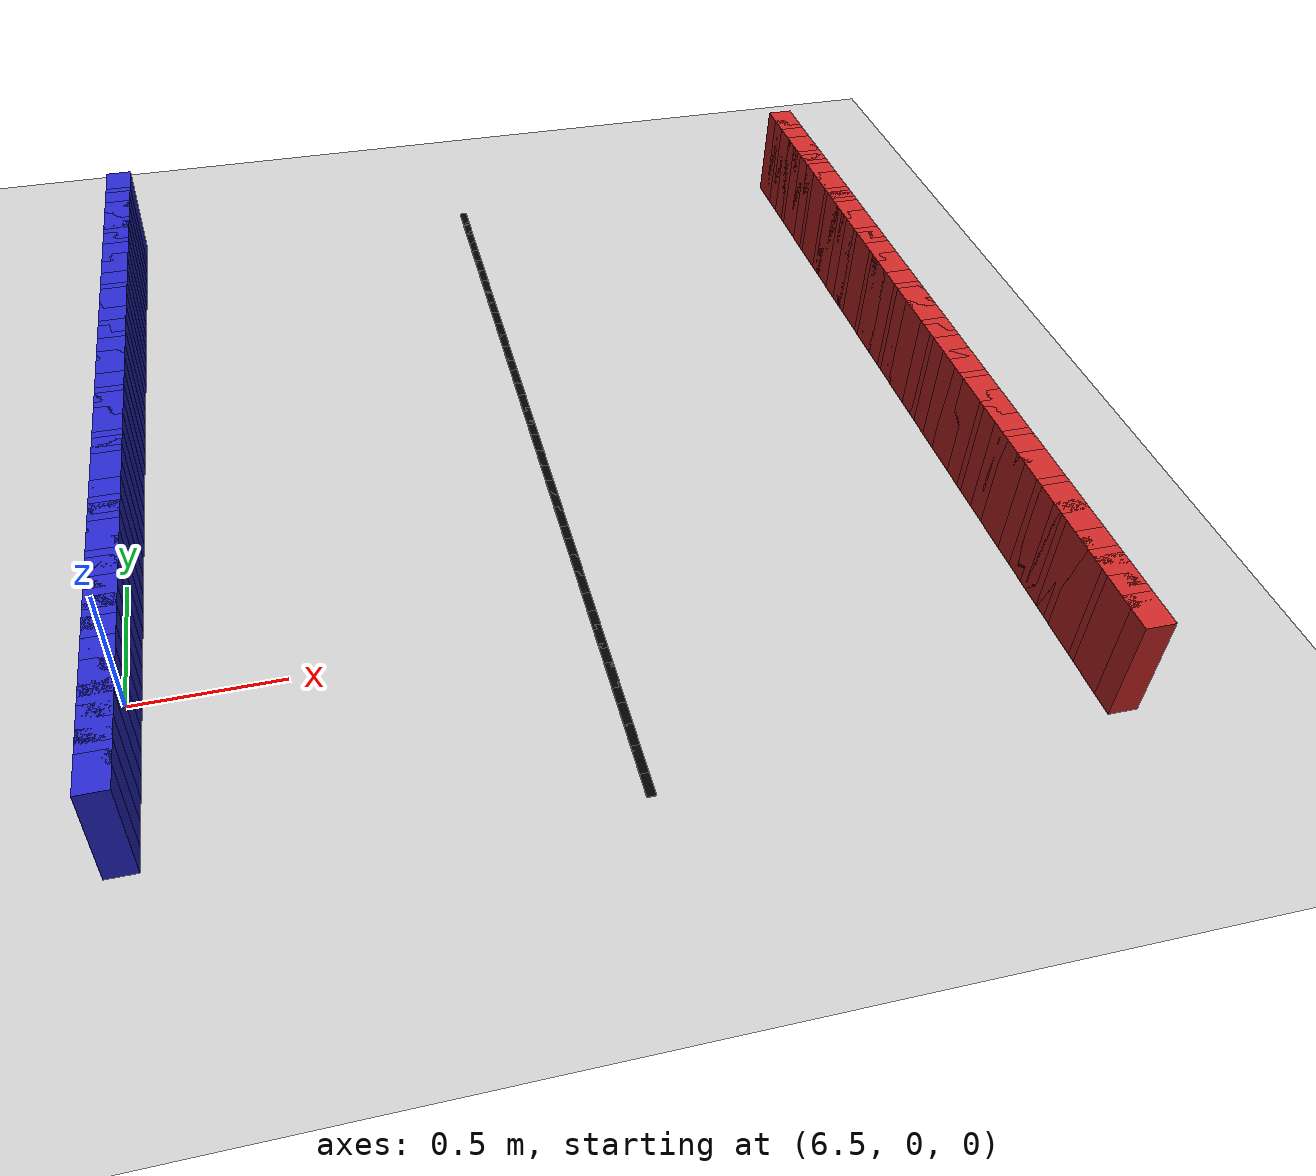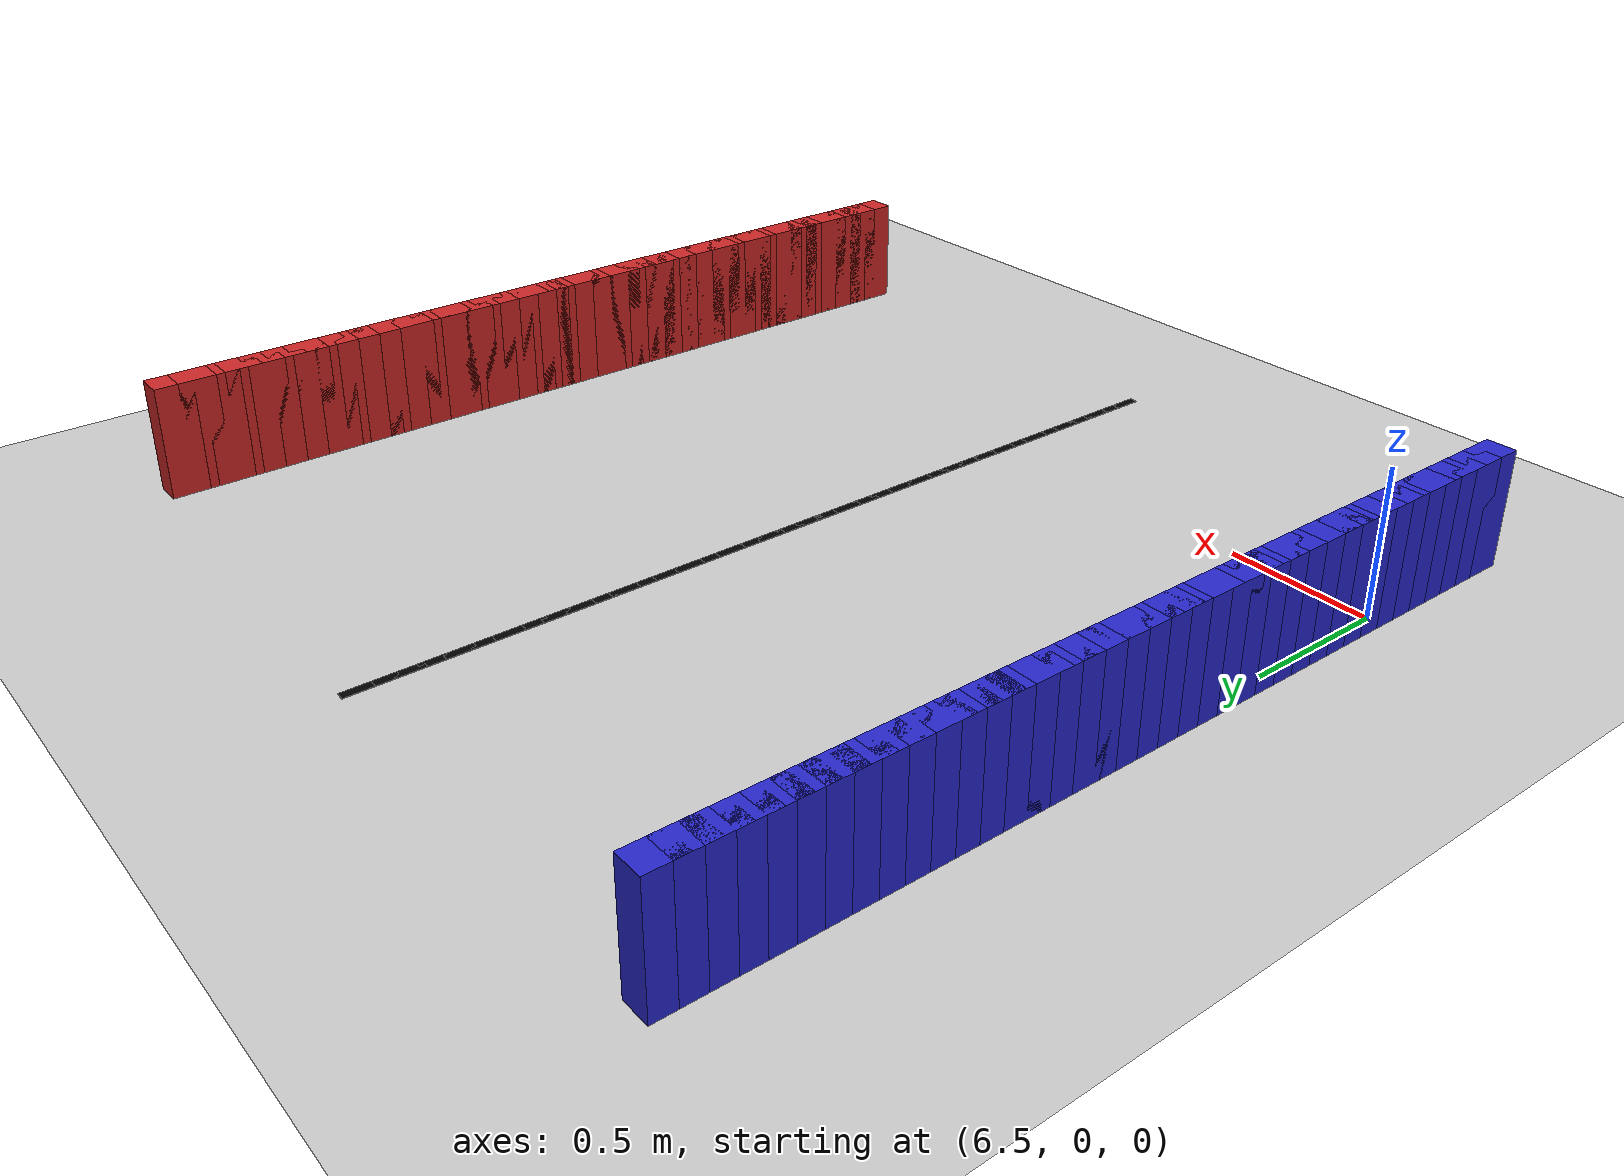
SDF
<sdf version="1.6">
 <world name="new_race_track">
  <include><uri>model://ground_plane</uri></include>
  <include><uri>model://sun</uri></include>
  <model name="iw_439">
   <static>true</static>
   <pose>6.5000 -0.5200 0.200 0 0 1.5708</pose>
   <link name="l">
    <collision name="c"><geometry><box><size>0.1300 0.1 0.4</size></box></geometry></collision>
    <visual name="v">
     <geometry><box><size>0.1300 0.1 0.4</size></box></geometry>
     <material><ambient>0.15 0.15 0.8 1</ambient><diffuse>0.15 0.15 0.8 1</diffuse></material>
    </visual>
   </link>
  </model>
  <model name="iw_440">
   <static>true</static>
   <pose>6.5000 -0.4400 0.200 0 0 1.5708</pose>
   <link name="l">
    <collision name="c"><geometry><box><size>0.1300 0.1 0.4</size></box></geometry></collision>
    <visual name="v">
     <geometry><box><size>0.1300 0.1 0.4</size></box></geometry>
     <material><ambient>0.15 0.15 0.8 1</ambient><diffuse>0.15 0.15 0.8 1</diffuse></material>
    </visual>
   </link>
  </model>
  <model name="iw_441">
   <static>true</static>
   <pose>6.5000 -0.3600 0.200 0 0 1.5708</pose>
   <link name="l">
    <collision name="c"><geometry><box><size>0.1300 0.1 0.4</size></box></geometry></collision>
    <visual name="v">
     <geometry><box><size>0.1300 0.1 0.4</size></box></geometry>
     <material><ambient>0.15 0.15 0.8 1</ambient><diffuse>0.15 0.15 0.8 1</diffuse></material>
    </visual>
   </link>
  </model>
  <model name="iw_442">
   <static>true</static>
   <pose>6.5000 -0.2800 0.200 0 0 1.5708</pose>
   <link name="l">
    <collision name="c"><geometry><box><size>0.1300 0.1 0.4</size></box></geometry></collision>
    <visual name="v">
     <geometry><box><size>0.1300 0.1 0.4</size></box></geometry>
     <material><ambient>0.15 0.15 0.8 1</ambient><diffuse>0.15 0.15 0.8 1</diffuse></material>
    </visual>
   </link>
  </model>
  <model name="iw_443">
   <static>true</static>
   <pose>6.5000 -0.2000 0.200 0 0 1.5708</pose>
   <link name="l">
    <collision name="c"><geometry><box><size>0.1300 0.1 0.4</size></box></geometry></collision>
    <visual name="v">
     <geometry><box><size>0.1300 0.1 0.4</size></box></geometry>
     <material><ambient>0.15 0.15 0.8 1</ambient><diffuse>0.15 0.15 0.8 1</diffuse></material>
    </visual>
   </link>
  </model>
  <model name="iw_444">
   <static>true</static>
   <pose>6.5000 -0.1200 0.200 0 0 1.5708</pose>
   <link name="l">
    <collision name="c"><geometry><box><size>0.1300 0.1 0.4</size></box></geometry></collision>
    <visual name="v">
     <geometry><box><size>0.1300 0.1 0.4</size></box></geometry>
     <material><ambient>0.15 0.15 0.8 1</ambient><diffuse>0.15 0.15 0.8 1</diffuse></material>
    </visual>
   </link>
  </model>
  <model name="iw_445">
   <static>true</static>
   <pose>6.5000 -0.0400 0.200 0 0 1.5708</pose>
   <link name="l">
    <collision name="c"><geometry><box><size>0.1300 0.1 0.4</size></box></geometry></collision>
    <visual name="v">
     <geometry><box><size>0.1300 0.1 0.4</size></box></geometry>
     <material><ambient>0.15 0.15 0.8 1</ambient><diffuse>0.15 0.15 0.8 1</diffuse></material>
    </visual>
   </link>
  </model>
  <model name="iw_446">
   <static>true</static>
   <pose>6.5000 0.0400 0.200 0 0 1.5708</pose>
   <link name="l">
    <collision name="c"><geometry><box><size>0.1300 0.1 0.4</size></box></geometry></collision>
    <visual name="v">
     <geometry><box><size>0.1300 0.1 0.4</size></box></geometry>
     <material><ambient>0.15 0.15 0.8 1</ambient><diffuse>0.15 0.15 0.8 1</diffuse></material>
    </visual>
   </link>
  </model>
  <model name="iw_447">
   <static>true</static>
   <pose>6.5000 0.1200 0.200 0 0 1.5708</pose>
   <link name="l">
    <collision name="c"><geometry><box><size>0.1300 0.1 0.4</size></box></geometry></collision>
    <visual name="v">
     <geometry><box><size>0.1300 0.1 0.4</size></box></geometry>
     <material><ambient>0.15 0.15 0.8 1</ambient><diffuse>0.15 0.15 0.8 1</diffuse></material>
    </visual>
   </link>
  </model>
  <model name="iw_448">
   <static>true</static>
   <pose>6.5000 0.2000 0.200 0 0 1.5708</pose>
   <link name="l">
    <collision name="c"><geometry><box><size>0.1300 0.1 0.4</size></box></geometry></collision>
    <visual name="v">
     <geometry><box><size>0.1300 0.1 0.4</size></box></geometry>
     <material><ambient>0.15 0.15 0.8 1</ambient><diffuse>0.15 0.15 0.8 1</diffuse></material>
    </visual>
   </link>
  </model>
  <model name="iw_449">
   <static>true</static>
   <pose>6.5000 0.2800 0.200 0 0 1.5708</pose>
   <link name="l">
    <collision name="c"><geometry><box><size>0.1300 0.1 0.4</size></box></geometry></collision>
    <visual name="v">
     <geometry><box><size>0.1300 0.1 0.4</size></box></geometry>
     <material><ambient>0.15 0.15 0.8 1</ambient><diffuse>0.15 0.15 0.8 1</diffuse></material>
    </visual>
   </link>
  </model>
  <model name="iw_450">
   <static>true</static>
   <pose>6.5000 0.3600 0.200 0 0 1.5708</pose>
   <link name="l">
    <collision name="c"><geometry><box><size>0.1300 0.1 0.4</size></box></geometry></collision>
    <visual name="v">
     <geometry><box><size>0.1300 0.1 0.4</size></box></geometry>
     <material><ambient>0.15 0.15 0.8 1</ambient><diffuse>0.15 0.15 0.8 1</diffuse></material>
    </visual>
   </link>
  </model>
  <model name="iw_451">
   <static>true</static>
   <pose>6.5000 0.4400 0.200 0 0 1.5708</pose>
   <link name="l">
    <collision name="c"><geometry><box><size>0.1300 0.1 0.4</size></box></geometry></collision>
    <visual name="v">
     <geometry><box><size>0.1300 0.1 0.4</size></box></geometry>
     <material><ambient>0.15 0.15 0.8 1</ambient><diffuse>0.15 0.15 0.8 1</diffuse></material>
    </visual>
   </link>
  </model>
  <model name="iw_452">
   <static>true</static>
   <pose>6.5000 0.5200 0.200 0 0 1.5708</pose>
   <link name="l">
    <collision name="c"><geometry><box><size>0.1300 0.1 0.4</size></box></geometry></collision>
    <visual name="v">
     <geometry><box><size>0.1300 0.1 0.4</size></box></geometry>
     <material><ambient>0.15 0.15 0.8 1</ambient><diffuse>0.15 0.15 0.8 1</diffuse></material>
    </visual>
   </link>
  </model>
  <model name="iw_453">
   <static>true</static>
   <pose>6.5000 0.6000 0.200 0 0 1.5708</pose>
   <link name="l">
    <collision name="c"><geometry><box><size>0.1300 0.1 0.4</size></box></geometry></collision>
    <visual name="v">
     <geometry><box><size>0.1300 0.1 0.4</size></box></geometry>
     <material><ambient>0.15 0.15 0.8 1</ambient><diffuse>0.15 0.15 0.8 1</diffuse></material>
    </visual>
   </link>
  </model>
  <model name="iw_454">
   <static>true</static>
   <pose>6.5000 0.6800 0.200 0 0 1.5708</pose>
   <link name="l">
    <collision name="c"><geometry><box><size>0.1300 0.1 0.4</size></box></geometry></collision>
    <visual name="v">
     <geometry><box><size>0.1300 0.1 0.4</size></box></geometry>
     <material><ambient>0.15 0.15 0.8 1</ambient><diffuse>0.15 0.15 0.8 1</diffuse></material>
    </visual>
   </link>
  </model>
  <model name="iw_455">
   <static>true</static>
   <pose>6.5000 0.7600 0.200 0 0 1.5708</pose>
   <link name="l">
    <collision name="c"><geometry><box><size>0.1300 0.1 0.4</size></box></geometry></collision>
    <visual name="v">
     <geometry><box><size>0.1300 0.1 0.4</size></box></geometry>
     <material><ambient>0.15 0.15 0.8 1</ambient><diffuse>0.15 0.15 0.8 1</diffuse></material>
    </visual>
   </link>
  </model>
  <model name="iw_456">
   <static>true</static>
   <pose>6.5000 0.8400 0.200 0 0 1.5708</pose>
   <link name="l">
    <collision name="c"><geometry><box><size>0.1300 0.1 0.4</size></box></geometry></collision>
    <visual name="v">
     <geometry><box><size>0.1300 0.1 0.4</size></box></geometry>
     <material><ambient>0.15 0.15 0.8 1</ambient><diffuse>0.15 0.15 0.8 1</diffuse></material>
    </visual>
   </link>
  </model>
  <model name="iw_457">
   <static>true</static>
   <pose>6.5000 0.9200 0.200 0 0 1.5708</pose>
   <link name="l">
    <collision name="c"><geometry><box><size>0.1300 0.1 0.4</size></box></geometry></collision>
    <visual name="v">
     <geometry><box><size>0.1300 0.1 0.4</size></box></geometry>
     <material><ambient>0.15 0.15 0.8 1</ambient><diffuse>0.15 0.15 0.8 1</diffuse></material>
    </visual>
   </link>
  </model>
  <model name="iw_458">
   <static>true</static>
   <pose>6.5000 1.0000 0.200 0 0 1.5708</pose>
   <link name="l">
    <collision name="c"><geometry><box><size>0.1300 0.1 0.4</size></box></geometry></collision>
    <visual name="v">
     <geometry><box><size>0.1300 0.1 0.4</size></box></geometry>
     <material><ambient>0.15 0.15 0.8 1</ambient><diffuse>0.15 0.15 0.8 1</diffuse></material>
    </visual>
   </link>
  </model>
  <model name="iw_459">
   <static>true</static>
   <pose>6.5000 1.0800 0.200 0 0 1.5708</pose>
   <link name="l">
    <collision name="c"><geometry><box><size>0.1300 0.1 0.4</size></box></geometry></collision>
    <visual name="v">
     <geometry><box><size>0.1300 0.1 0.4</size></box></geometry>
     <material><ambient>0.15 0.15 0.8 1</ambient><diffuse>0.15 0.15 0.8 1</diffuse></material>
    </visual>
   </link>
  </model>
  <model name="iw_460">
   <static>true</static>
   <pose>6.5000 1.1600 0.200 0 0 1.5708</pose>
   <link name="l">
    <collision name="c"><geometry><box><size>0.1300 0.1 0.4</size></box></geometry></collision>
    <visual name="v">
     <geometry><box><size>0.1300 0.1 0.4</size></box></geometry>
     <material><ambient>0.15 0.15 0.8 1</ambient><diffuse>0.15 0.15 0.8 1</diffuse></material>
    </visual>
   </link>
  </model>
  <model name="iw_461">
   <static>true</static>
   <pose>6.5000 1.2400 0.200 0 0 1.5708</pose>
   <link name="l">
    <collision name="c"><geometry><box><size>0.1300 0.1 0.4</size></box></geometry></collision>
    <visual name="v">
     <geometry><box><size>0.1300 0.1 0.4</size></box></geometry>
     <material><ambient>0.15 0.15 0.8 1</ambient><diffuse>0.15 0.15 0.8 1</diffuse></material>
    </visual>
   </link>
  </model>
  <model name="iw_462">
   <static>true</static>
   <pose>6.5000 1.3200 0.200 0 0 1.5708</pose>
   <link name="l">
    <collision name="c"><geometry><box><size>0.1300 0.1 0.4</size></box></geometry></collision>
    <visual name="v">
     <geometry><box><size>0.1300 0.1 0.4</size></box></geometry>
     <material><ambient>0.15 0.15 0.8 1</ambient><diffuse>0.15 0.15 0.8 1</diffuse></material>
    </visual>
   </link>
  </model>
  <model name="iw_463">
   <static>true</static>
   <pose>6.5000 1.4000 0.200 0 0 1.5708</pose>
   <link name="l">
    <collision name="c"><geometry><box><size>0.1300 0.1 0.4</size></box></geometry></collision>
    <visual name="v">
     <geometry><box><size>0.1300 0.1 0.4</size></box></geometry>
     <material><ambient>0.15 0.15 0.8 1</ambient><diffuse>0.15 0.15 0.8 1</diffuse></material>
    </visual>
   </link>
  </model>
  <model name="iw_464">
   <static>true</static>
   <pose>6.5000 1.4800 0.200 0 0 1.5708</pose>
   <link name="l">
    <collision name="c"><geometry><box><size>0.1300 0.1 0.4</size></box></geometry></collision>
    <visual name="v">
     <geometry><box><size>0.1300 0.1 0.4</size></box></geometry>
     <material><ambient>0.15 0.15 0.8 1</ambient><diffuse>0.15 0.15 0.8 1</diffuse></material>
    </visual>
   </link>
  </model>
  <model name="iw_465">
   <static>true</static>
   <pose>6.5000 1.5600 0.200 0 0 1.5708</pose>
   <link name="l">
    <collision name="c"><geometry><box><size>0.1300 0.1 0.4</size></box></geometry></collision>
    <visual name="v">
     <geometry><box><size>0.1300 0.1 0.4</size></box></geometry>
     <material><ambient>0.15 0.15 0.8 1</ambient><diffuse>0.15 0.15 0.8 1</diffuse></material>
    </visual>
   </link>
  </model>
  <model name="iw_466">
   <static>true</static>
   <pose>6.5000 1.6400 0.200 0 0 1.5708</pose>
   <link name="l">
    <collision name="c"><geometry><box><size>0.1300 0.1 0.4</size></box></geometry></collision>
    <visual name="v">
     <geometry><box><size>0.1300 0.1 0.4</size></box></geometry>
     <material><ambient>0.15 0.15 0.8 1</ambient><diffuse>0.15 0.15 0.8 1</diffuse></material>
    </visual>
   </link>
  </model>
  <model name="iw_467">
   <static>true</static>
   <pose>6.5000 1.7200 0.200 0 0 1.5708</pose>
   <link name="l">
    <collision name="c"><geometry><box><size>0.1300 0.1 0.4</size></box></geometry></collision>
    <visual name="v">
     <geometry><box><size>0.1300 0.1 0.4</size></box></geometry>
     <material><ambient>0.15 0.15 0.8 1</ambient><diffuse>0.15 0.15 0.8 1</diffuse></material>
    </visual>
   </link>
  </model>
  <model name="iw_468">
   <static>true</static>
   <pose>6.5000 1.8000 0.200 0 0 1.5708</pose>
   <link name="l">
    <collision name="c"><geometry><box><size>0.1300 0.1 0.4</size></box></geometry></collision>
    <visual name="v">
     <geometry><box><size>0.1300 0.1 0.4</size></box></geometry>
     <material><ambient>0.15 0.15 0.8 1</ambient><diffuse>0.15 0.15 0.8 1</diffuse></material>
    </visual>
   </link>
  </model>
  <model name="iw_469">
   <static>true</static>
   <pose>6.5000 1.8800 0.200 0 0 1.5708</pose>
   <link name="l">
    <collision name="c"><geometry><box><size>0.1300 0.1 0.4</size></box></geometry></collision>
    <visual name="v">
     <geometry><box><size>0.1300 0.1 0.4</size></box></geometry>
     <material><ambient>0.15 0.15 0.8 1</ambient><diffuse>0.15 0.15 0.8 1</diffuse></material>
    </visual>
   </link>
  </model>
  <model name="iw_470">
   <static>true</static>
   <pose>6.5000 1.9600 0.200 0 0 1.5708</pose>
   <link name="l">
    <collision name="c"><geometry><box><size>0.1300 0.1 0.4</size></box></geometry></collision>
    <visual name="v">
     <geometry><box><size>0.1300 0.1 0.4</size></box></geometry>
     <material><ambient>0.15 0.15 0.8 1</ambient><diffuse>0.15 0.15 0.8 1</diffuse></material>
    </visual>
   </link>
  </model>
  <model name="iw_471">
   <static>true</static>
   <pose>6.5000 2.0400 0.200 0 0 1.5708</pose>
   <link name="l">
    <collision name="c"><geometry><box><size>0.1300 0.1 0.4</size></box></geometry></collision>
    <visual name="v">
     <geometry><box><size>0.1300 0.1 0.4</size></box></geometry>
     <material><ambient>0.15 0.15 0.8 1</ambient><diffuse>0.15 0.15 0.8 1</diffuse></material>
    </visual>
   </link>
  </model>
  <model name="iw_472">
   <static>true</static>
   <pose>6.5000 2.1200 0.200 0 0 1.5708</pose>
   <link name="l">
    <collision name="c"><geometry><box><size>0.1300 0.1 0.4</size></box></geometry></collision>
    <visual name="v">
     <geometry><box><size>0.1300 0.1 0.4</size></box></geometry>
     <material><ambient>0.15 0.15 0.8 1</ambient><diffuse>0.15 0.15 0.8 1</diffuse></material>
    </visual>
   </link>
  </model>
  <model name="iw_473">
   <static>true</static>
   <pose>6.5000 2.2000 0.200 0 0 1.5708</pose>
   <link name="l">
    <collision name="c"><geometry><box><size>0.1300 0.1 0.4</size></box></geometry></collision>
    <visual name="v">
     <geometry><box><size>0.1300 0.1 0.4</size></box></geometry>
     <material><ambient>0.15 0.15 0.8 1</ambient><diffuse>0.15 0.15 0.8 1</diffuse></material>
    </visual>
   </link>
  </model>
  <model name="iw_474">
   <static>true</static>
   <pose>6.5000 2.2800 0.200 0 0 1.5708</pose>
   <link name="l">
    <collision name="c"><geometry><box><size>0.1300 0.1 0.4</size></box></geometry></collision>
    <visual name="v">
     <geometry><box><size>0.1300 0.1 0.4</size></box></geometry>
     <material><ambient>0.15 0.15 0.8 1</ambient><diffuse>0.15 0.15 0.8 1</diffuse></material>
    </visual>
   </link>
  </model>
  <model name="iw_475">
   <static>true</static>
   <pose>6.5000 2.3600 0.200 0 0 1.5708</pose>
   <link name="l">
    <collision name="c"><geometry><box><size>0.1300 0.1 0.4</size></box></geometry></collision>
    <visual name="v">
     <geometry><box><size>0.1300 0.1 0.4</size></box></geometry>
     <material><ambient>0.15 0.15 0.8 1</ambient><diffuse>0.15 0.15 0.8 1</diffuse></material>
    </visual>
   </link>
  </model>
  <model name="iw_476">
   <static>true</static>
   <pose>6.5000 2.4400 0.200 0 0 1.5708</pose>
   <link name="l">
    <collision name="c"><geometry><box><size>0.1300 0.1 0.4</size></box></geometry></collision>
    <visual name="v">
     <geometry><box><size>0.1300 0.1 0.4</size></box></geometry>
     <material><ambient>0.15 0.15 0.8 1</ambient><diffuse>0.15 0.15 0.8 1</diffuse></material>
    </visual>
   </link>
  </model>
  <model name="iw_477">
   <static>true</static>
   <pose>6.5000 2.5200 0.200 0 0 1.5708</pose>
   <link name="l">
    <collision name="c"><geometry><box><size>0.1300 0.1 0.4</size></box></geometry></collision>
    <visual name="v">
     <geometry><box><size>0.1300 0.1 0.4</size></box></geometry>
     <material><ambient>0.15 0.15 0.8 1</ambient><diffuse>0.15 0.15 0.8 1</diffuse></material>
    </visual>
   </link>
  </model>
  <model name="ow_438">
   <static>true</static>
   <pose>9.5000 -0.6000 0.200 0 0 1.5708</pose>
   <link name="l">
    <collision name="c"><geometry><box><size>0.1300 0.1 0.4</size></box></geometry></collision>
    <visual name="v">
     <geometry><box><size>0.1300 0.1 0.4</size></box></geometry>
     <material><ambient>0.8 0.15 0.15 1</ambient><diffuse>0.8 0.15 0.15 1</diffuse></material>
    </visual>
   </link>
  </model>
  <model name="ow_439">
   <static>true</static>
   <pose>9.5000 -0.5200 0.200 0 0 1.5708</pose>
   <link name="l">
    <collision name="c"><geometry><box><size>0.1300 0.1 0.4</size></box></geometry></collision>
    <visual name="v">
     <geometry><box><size>0.1300 0.1 0.4</size></box></geometry>
     <material><ambient>0.8 0.15 0.15 1</ambient><diffuse>0.8 0.15 0.15 1</diffuse></material>
    </visual>
   </link>
  </model>
  <model name="ow_440">
   <static>true</static>
   <pose>9.5000 -0.4400 0.200 0 0 1.5708</pose>
   <link name="l">
    <collision name="c"><geometry><box><size>0.1300 0.1 0.4</size></box></geometry></collision>
    <visual name="v">
     <geometry><box><size>0.1300 0.1 0.4</size></box></geometry>
     <material><ambient>0.8 0.15 0.15 1</ambient><diffuse>0.8 0.15 0.15 1</diffuse></material>
    </visual>
   </link>
  </model>
  <model name="ow_441">
   <static>true</static>
   <pose>9.5000 -0.3600 0.200 0 0 1.5708</pose>
   <link name="l">
    <collision name="c"><geometry><box><size>0.1300 0.1 0.4</size></box></geometry></collision>
    <visual name="v">
     <geometry><box><size>0.1300 0.1 0.4</size></box></geometry>
     <material><ambient>0.8 0.15 0.15 1</ambient><diffuse>0.8 0.15 0.15 1</diffuse></material>
    </visual>
   </link>
  </model>
  <model name="ow_442">
   <static>true</static>
   <pose>9.5000 -0.2800 0.200 0 0 1.5708</pose>
   <link name="l">
    <collision name="c"><geometry><box><size>0.1300 0.1 0.4</size></box></geometry></collision>
    <visual name="v">
     <geometry><box><size>0.1300 0.1 0.4</size></box></geometry>
     <material><ambient>0.8 0.15 0.15 1</ambient><diffuse>0.8 0.15 0.15 1</diffuse></material>
    </visual>
   </link>
  </model>
  <model name="ow_443">
   <static>true</static>
   <pose>9.5000 -0.2000 0.200 0 0 1.5708</pose>
   <link name="l">
    <collision name="c"><geometry><box><size>0.1300 0.1 0.4</size></box></geometry></collision>
    <visual name="v">
     <geometry><box><size>0.1300 0.1 0.4</size></box></geometry>
     <material><ambient>0.8 0.15 0.15 1</ambient><diffuse>0.8 0.15 0.15 1</diffuse></material>
    </visual>
   </link>
  </model>
  <model name="ow_444">
   <static>true</static>
   <pose>9.5000 -0.1200 0.200 0 0 1.5708</pose>
   <link name="l">
    <collision name="c"><geometry><box><size>0.1300 0.1 0.4</size></box></geometry></collision>
    <visual name="v">
     <geometry><box><size>0.1300 0.1 0.4</size></box></geometry>
     <material><ambient>0.8 0.15 0.15 1</ambient><diffuse>0.8 0.15 0.15 1</diffuse></material>
    </visual>
   </link>
  </model>
  <model name="ow_445">
   <static>true</static>
   <pose>9.5000 -0.0400 0.200 0 0 1.5708</pose>
   <link name="l">
    <collision name="c"><geometry><box><size>0.1300 0.1 0.4</size></box></geometry></collision>
    <visual name="v">
     <geometry><box><size>0.1300 0.1 0.4</size></box></geometry>
     <material><ambient>0.8 0.15 0.15 1</ambient><diffuse>0.8 0.15 0.15 1</diffuse></material>
    </visual>
   </link>
  </model>
  <model name="ow_446">
   <static>true</static>
   <pose>9.5000 0.0400 0.200 0 0 1.5708</pose>
   <link name="l">
    <collision name="c"><geometry><box><size>0.1300 0.1 0.4</size></box></geometry></collision>
    <visual name="v">
     <geometry><box><size>0.1300 0.1 0.4</size></box></geometry>
     <material><ambient>0.8 0.15 0.15 1</ambient><diffuse>0.8 0.15 0.15 1</diffuse></material>
    </visual>
   </link>
  </model>
  <model name="ow_447">
   <static>true</static>
   <pose>9.5000 0.1200 0.200 0 0 1.5708</pose>
   <link name="l">
    <collision name="c"><geometry><box><size>0.1300 0.1 0.4</size></box></geometry></collision>
    <visual name="v">
     <geometry><box><size>0.1300 0.1 0.4</size></box></geometry>
     <material><ambient>0.8 0.15 0.15 1</ambient><diffuse>0.8 0.15 0.15 1</diffuse></material>
    </visual>
   </link>
  </model>
  <model name="ow_448">
   <static>true</static>
   <pose>9.5000 0.2000 0.200 0 0 1.5708</pose>
   <link name="l">
    <collision name="c"><geometry><box><size>0.1300 0.1 0.4</size></box></geometry></collision>
    <visual name="v">
     <geometry><box><size>0.1300 0.1 0.4</size></box></geometry>
     <material><ambient>0.8 0.15 0.15 1</ambient><diffuse>0.8 0.15 0.15 1</diffuse></material>
    </visual>
   </link>
  </model>
  <model name="ow_449">
   <static>true</static>
   <pose>9.5000 0.2800 0.200 0 0 1.5708</pose>
   <link name="l">
    <collision name="c"><geometry><box><size>0.1300 0.1 0.4</size></box></geometry></collision>
    <visual name="v">
     <geometry><box><size>0.1300 0.1 0.4</size></box></geometry>
     <material><ambient>0.8 0.15 0.15 1</ambient><diffuse>0.8 0.15 0.15 1</diffuse></material>
    </visual>
   </link>
  </model>
  <model name="ow_450">
   <static>true</static>
   <pose>9.5000 0.3600 0.200 0 0 1.5708</pose>
   <link name="l">
    <collision name="c"><geometry><box><size>0.1300 0.1 0.4</size></box></geometry></collision>
    <visual name="v">
     <geometry><box><size>0.1300 0.1 0.4</size></box></geometry>
     <material><ambient>0.8 0.15 0.15 1</ambient><diffuse>0.8 0.15 0.15 1</diffuse></material>
    </visual>
   </link>
  </model>
  <model name="ow_451">
   <static>true</static>
   <pose>9.5000 0.4400 0.200 0 0 1.5708</pose>
   <link name="l">
    <collision name="c"><geometry><box><size>0.1300 0.1 0.4</size></box></geometry></collision>
    <visual name="v">
     <geometry><box><size>0.1300 0.1 0.4</size></box></geometry>
     <material><ambient>0.8 0.15 0.15 1</ambient><diffuse>0.8 0.15 0.15 1</diffuse></material>
    </visual>
   </link>
  </model>
  <model name="ow_452">
   <static>true</static>
   <pose>9.5000 0.5200 0.200 0 0 1.5708</pose>
   <link name="l">
    <collision name="c"><geometry><box><size>0.1300 0.1 0.4</size></box></geometry></collision>
    <visual name="v">
     <geometry><box><size>0.1300 0.1 0.4</size></box></geometry>
     <material><ambient>0.8 0.15 0.15 1</ambient><diffuse>0.8 0.15 0.15 1</diffuse></material>
    </visual>
   </link>
  </model>
  <model name="ow_453">
   <static>true</static>
   <pose>9.5000 0.6000 0.200 0 0 1.5708</pose>
   <link name="l">
    <collision name="c"><geometry><box><size>0.1300 0.1 0.4</size></box></geometry></collision>
    <visual name="v">
     <geometry><box><size>0.1300 0.1 0.4</size></box></geometry>
     <material><ambient>0.8 0.15 0.15 1</ambient><diffuse>0.8 0.15 0.15 1</diffuse></material>
    </visual>
   </link>
  </model>
  <model name="ow_454">
   <static>true</static>
   <pose>9.5000 0.6800 0.200 0 0 1.5708</pose>
   <link name="l">
    <collision name="c"><geometry><box><size>0.1300 0.1 0.4</size></box></geometry></collision>
    <visual name="v">
     <geometry><box><size>0.1300 0.1 0.4</size></box></geometry>
     <material><ambient>0.8 0.15 0.15 1</ambient><diffuse>0.8 0.15 0.15 1</diffuse></material>
    </visual>
   </link>
  </model>
  <model name="ow_455">
   <static>true</static>
   <pose>9.5000 0.7600 0.200 0 0 1.5708</pose>
   <link name="l">
    <collision name="c"><geometry><box><size>0.1300 0.1 0.4</size></box></geometry></collision>
    <visual name="v">
     <geometry><box><size>0.1300 0.1 0.4</size></box></geometry>
     <material><ambient>0.8 0.15 0.15 1</ambient><diffuse>0.8 0.15 0.15 1</diffuse></material>
    </visual>
   </link>
  </model>
  <model name="ow_456">
   <static>true</static>
   <pose>9.5000 0.8400 0.200 0 0 1.5708</pose>
   <link name="l">
    <collision name="c"><geometry><box><size>0.1300 0.1 0.4</size></box></geometry></collision>
    <visual name="v">
     <geometry><box><size>0.1300 0.1 0.4</size></box></geometry>
     <material><ambient>0.8 0.15 0.15 1</ambient><diffuse>0.8 0.15 0.15 1</diffuse></material>
    </visual>
   </link>
  </model>
  <model name="ow_457">
   <static>true</static>
   <pose>9.5000 0.9200 0.200 0 0 1.5708</pose>
   <link name="l">
    <collision name="c"><geometry><box><size>0.1300 0.1 0.4</size></box></geometry></collision>
    <visual name="v">
     <geometry><box><size>0.1300 0.1 0.4</size></box></geometry>
     <material><ambient>0.8 0.15 0.15 1</ambient><diffuse>0.8 0.15 0.15 1</diffuse></material>
    </visual>
   </link>
  </model>
  <model name="ow_458">
   <static>true</static>
   <pose>9.5000 1.0000 0.200 0 0 1.5708</pose>
   <link name="l">
    <collision name="c"><geometry><box><size>0.1300 0.1 0.4</size></box></geometry></collision>
    <visual name="v">
     <geometry><box><size>0.1300 0.1 0.4</size></box></geometry>
     <material><ambient>0.8 0.15 0.15 1</ambient><diffuse>0.8 0.15 0.15 1</diffuse></material>
    </visual>
   </link>
  </model>
  <model name="ow_459">
   <static>true</static>
   <pose>9.5000 1.0800 0.200 0 0 1.5708</pose>
   <link name="l">
    <collision name="c"><geometry><box><size>0.1300 0.1 0.4</size></box></geometry></collision>
    <visual name="v">
     <geometry><box><size>0.1300 0.1 0.4</size></box></geometry>
     <material><ambient>0.8 0.15 0.15 1</ambient><diffuse>0.8 0.15 0.15 1</diffuse></material>
    </visual>
   </link>
  </model>
  <model name="ow_460">
   <static>true</static>
   <pose>9.5000 1.1600 0.200 0 0 1.5708</pose>
   <link name="l">
    <collision name="c"><geometry><box><size>0.1300 0.1 0.4</size></box></geometry></collision>
    <visual name="v">
     <geometry><box><size>0.1300 0.1 0.4</size></box></geometry>
     <material><ambient>0.8 0.15 0.15 1</ambient><diffuse>0.8 0.15 0.15 1</diffuse></material>
    </visual>
   </link>
  </model>
  <model name="ow_461">
   <static>true</static>
   <pose>9.5000 1.2400 0.200 0 0 1.5708</pose>
   <link name="l">
    <collision name="c"><geometry><box><size>0.1300 0.1 0.4</size></box></geometry></collision>
    <visual name="v">
     <geometry><box><size>0.1300 0.1 0.4</size></box></geometry>
     <material><ambient>0.8 0.15 0.15 1</ambient><diffuse>0.8 0.15 0.15 1</diffuse></material>
    </visual>
   </link>
  </model>
  <model name="ow_462">
   <static>true</static>
   <pose>9.5000 1.3200 0.200 0 0 1.5708</pose>
   <link name="l">
    <collision name="c"><geometry><box><size>0.1300 0.1 0.4</size></box></geometry></collision>
    <visual name="v">
     <geometry><box><size>0.1300 0.1 0.4</size></box></geometry>
     <material><ambient>0.8 0.15 0.15 1</ambient><diffuse>0.8 0.15 0.15 1</diffuse></material>
    </visual>
   </link>
  </model>
  <model name="ow_463">
   <static>true</static>
   <pose>9.5000 1.4000 0.200 0 0 1.5708</pose>
   <link name="l">
    <collision name="c"><geometry><box><size>0.1300 0.1 0.4</size></box></geometry></collision>
    <visual name="v">
     <geometry><box><size>0.1300 0.1 0.4</size></box></geometry>
     <material><ambient>0.8 0.15 0.15 1</ambient><diffuse>0.8 0.15 0.15 1</diffuse></material>
    </visual>
   </link>
  </model>
  <model name="ow_464">
   <static>true</static>
   <pose>9.5000 1.4800 0.200 0 0 1.5708</pose>
   <link name="l">
    <collision name="c"><geometry><box><size>0.1300 0.1 0.4</size></box></geometry></collision>
    <visual name="v">
     <geometry><box><size>0.1300 0.1 0.4</size></box></geometry>
     <material><ambient>0.8 0.15 0.15 1</ambient><diffuse>0.8 0.15 0.15 1</diffuse></material>
    </visual>
   </link>
  </model>
  <model name="ow_465">
   <static>true</static>
   <pose>9.5000 1.5600 0.200 0 0 1.5708</pose>
   <link name="l">
    <collision name="c"><geometry><box><size>0.1300 0.1 0.4</size></box></geometry></collision>
    <visual name="v">
     <geometry><box><size>0.1300 0.1 0.4</size></box></geometry>
     <material><ambient>0.8 0.15 0.15 1</ambient><diffuse>0.8 0.15 0.15 1</diffuse></material>
    </visual>
   </link>
  </model>
  <model name="ow_466">
   <static>true</static>
   <pose>9.5000 1.6400 0.200 0 0 1.5708</pose>
   <link name="l">
    <collision name="c"><geometry><box><size>0.1300 0.1 0.4</size></box></geometry></collision>
    <visual name="v">
     <geometry><box><size>0.1300 0.1 0.4</size></box></geometry>
     <material><ambient>0.8 0.15 0.15 1</ambient><diffuse>0.8 0.15 0.15 1</diffuse></material>
    </visual>
   </link>
  </model>
  <model name="ow_467">
   <static>true</static>
   <pose>9.5000 1.7200 0.200 0 0 1.5708</pose>
   <link name="l">
    <collision name="c"><geometry><box><size>0.1300 0.1 0.4</size></box></geometry></collision>
    <visual name="v">
     <geometry><box><size>0.1300 0.1 0.4</size></box></geometry>
     <material><ambient>0.8 0.15 0.15 1</ambient><diffuse>0.8 0.15 0.15 1</diffuse></material>
    </visual>
   </link>
  </model>
  <model name="ow_468">
   <static>true</static>
   <pose>9.5000 1.8000 0.200 0 0 1.5708</pose>
   <link name="l">
    <collision name="c"><geometry><box><size>0.1300 0.1 0.4</size></box></geometry></collision>
    <visual name="v">
     <geometry><box><size>0.1300 0.1 0.4</size></box></geometry>
     <material><ambient>0.8 0.15 0.15 1</ambient><diffuse>0.8 0.15 0.15 1</diffuse></material>
    </visual>
   </link>
  </model>
  <model name="ow_469">
   <static>true</static>
   <pose>9.5000 1.8800 0.200 0 0 1.5708</pose>
   <link name="l">
    <collision name="c"><geometry><box><size>0.1300 0.1 0.4</size></box></geometry></collision>
    <visual name="v">
     <geometry><box><size>0.1300 0.1 0.4</size></box></geometry>
     <material><ambient>0.8 0.15 0.15 1</ambient><diffuse>0.8 0.15 0.15 1</diffuse></material>
    </visual>
   </link>
  </model>
  <model name="ow_470">
   <static>true</static>
   <pose>9.5000 1.9600 0.200 0 0 1.5708</pose>
   <link name="l">
    <collision name="c"><geometry><box><size>0.1300 0.1 0.4</size></box></geometry></collision>
    <visual name="v">
     <geometry><box><size>0.1300 0.1 0.4</size></box></geometry>
     <material><ambient>0.8 0.15 0.15 1</ambient><diffuse>0.8 0.15 0.15 1</diffuse></material>
    </visual>
   </link>
  </model>
  <model name="ow_471">
   <static>true</static>
   <pose>9.5000 2.0400 0.200 0 0 1.5708</pose>
   <link name="l">
    <collision name="c"><geometry><box><size>0.1300 0.1 0.4</size></box></geometry></collision>
    <visual name="v">
     <geometry><box><size>0.1300 0.1 0.4</size></box></geometry>
     <material><ambient>0.8 0.15 0.15 1</ambient><diffuse>0.8 0.15 0.15 1</diffuse></material>
    </visual>
   </link>
  </model>
  <model name="ow_472">
   <static>true</static>
   <pose>9.5000 2.1200 0.200 0 0 1.5708</pose>
   <link name="l">
    <collision name="c"><geometry><box><size>0.1300 0.1 0.4</size></box></geometry></collision>
    <visual name="v">
     <geometry><box><size>0.1300 0.1 0.4</size></box></geometry>
     <material><ambient>0.8 0.15 0.15 1</ambient><diffuse>0.8 0.15 0.15 1</diffuse></material>
    </visual>
   </link>
  </model>
  <model name="ow_473">
   <static>true</static>
   <pose>9.5000 2.2000 0.200 0 0 1.5708</pose>
   <link name="l">
    <collision name="c"><geometry><box><size>0.1300 0.1 0.4</size></box></geometry></collision>
    <visual name="v">
     <geometry><box><size>0.1300 0.1 0.4</size></box></geometry>
     <material><ambient>0.8 0.15 0.15 1</ambient><diffuse>0.8 0.15 0.15 1</diffuse></material>
    </visual>
   </link>
  </model>
  <model name="ow_474">
   <static>true</static>
   <pose>9.5000 2.2800 0.200 0 0 1.5708</pose>
   <link name="l">
    <collision name="c"><geometry><box><size>0.1300 0.1 0.4</size></box></geometry></collision>
    <visual name="v">
     <geometry><box><size>0.1300 0.1 0.4</size></box></geometry>
     <material><ambient>0.8 0.15 0.15 1</ambient><diffuse>0.8 0.15 0.15 1</diffuse></material>
    </visual>
   </link>
  </model>
  <model name="ow_475">
   <static>true</static>
   <pose>9.5000 2.3600 0.200 0 0 1.5708</pose>
   <link name="l">
    <collision name="c"><geometry><box><size>0.1300 0.1 0.4</size></box></geometry></collision>
    <visual name="v">
     <geometry><box><size>0.1300 0.1 0.4</size></box></geometry>
     <material><ambient>0.8 0.15 0.15 1</ambient><diffuse>0.8 0.15 0.15 1</diffuse></material>
    </visual>
   </link>
  </model>
  <model name="ow_476">
   <static>true</static>
   <pose>9.5000 2.4400 0.200 0 0 1.5708</pose>
   <link name="l">
    <collision name="c"><geometry><box><size>0.1300 0.1 0.4</size></box></geometry></collision>
    <visual name="v">
     <geometry><box><size>0.1300 0.1 0.4</size></box></geometry>
     <material><ambient>0.8 0.15 0.15 1</ambient><diffuse>0.8 0.15 0.15 1</diffuse></material>
    </visual>
   </link>
  </model>
  <model name="line_438">
   <static>true</static>
   <pose>8.0000 -0.6000 0.002 0 0 1.5708</pose>
   <link name="l">
    <visual name="v">
     <geometry><box><size>0.1000 0.03 0.002</size></box></geometry>
     <material><ambient>0 0 0 1</ambient><diffuse>0 0 0 1</diffuse></material>
    </visual>
   </link>
  </model>
  <model name="line_439">
   <static>true</static>
   <pose>8.0000 -0.5200 0.002 0 0 1.5708</pose>
   <link name="l">
    <visual name="v">
     <geometry><box><size>0.1000 0.03 0.002</size></box></geometry>
     <material><ambient>0 0 0 1</ambient><diffuse>0 0 0 1</diffuse></material>
    </visual>
   </link>
  </model>
  <model name="line_440">
   <static>true</static>
   <pose>8.0000 -0.4400 0.002 0 0 1.5708</pose>
   <link name="l">
    <visual name="v">
     <geometry><box><size>0.1000 0.03 0.002</size></box></geometry>
     <material><ambient>0 0 0 1</ambient><diffuse>0 0 0 1</diffuse></material>
    </visual>
   </link>
  </model>
  <model name="line_441">
   <static>true</static>
   <pose>8.0000 -0.3600 0.002 0 0 1.5708</pose>
   <link name="l">
    <visual name="v">
     <geometry><box><size>0.1000 0.03 0.002</size></box></geometry>
     <material><ambient>0 0 0 1</ambient><diffuse>0 0 0 1</diffuse></material>
    </visual>
   </link>
  </model>
  <model name="line_442">
   <static>true</static>
   <pose>8.0000 -0.2800 0.002 0 0 1.5708</pose>
   <link name="l">
    <visual name="v">
     <geometry><box><size>0.1000 0.03 0.002</size></box></geometry>
     <material><ambient>0 0 0 1</ambient><diffuse>0 0 0 1</diffuse></material>
    </visual>
   </link>
  </model>
  <model name="line_443">
   <static>true</static>
   <pose>8.0000 -0.2000 0.002 0 0 1.5708</pose>
   <link name="l">
    <visual name="v">
     <geometry><box><size>0.1000 0.03 0.002</size></box></geometry>
     <material><ambient>0 0 0 1</ambient><diffuse>0 0 0 1</diffuse></material>
    </visual>
   </link>
  </model>
  <model name="line_444">
   <static>true</static>
   <pose>8.0000 -0.1200 0.002 0 0 1.5708</pose>
   <link name="l">
    <visual name="v">
     <geometry><box><size>0.1000 0.03 0.002</size></box></geometry>
     <material><ambient>0 0 0 1</ambient><diffuse>0 0 0 1</diffuse></material>
    </visual>
   </link>
  </model>
  <model name="line_445">
   <static>true</static>
   <pose>8.0000 -0.0400 0.002 0 0 1.5708</pose>
   <link name="l">
    <visual name="v">
     <geometry><box><size>0.1000 0.03 0.002</size></box></geometry>
     <material><ambient>0 0 0 1</ambient><diffuse>0 0 0 1</diffuse></material>
    </visual>
   </link>
  </model>
  <model name="line_446">
   <static>true</static>
   <pose>8.0000 0.0400 0.002 0 0 1.5708</pose>
   <link name="l">
    <visual name="v">
     <geometry><box><size>0.1000 0.03 0.002</size></box></geometry>
     <material><ambient>0 0 0 1</ambient><diffuse>0 0 0 1</diffuse></material>
    </visual>
   </link>
  </model>
  <model name="line_447">
   <static>true</static>
   <pose>8.0000 0.1200 0.002 0 0 1.5708</pose>
   <link name="l">
    <visual name="v">
     <geometry><box><size>0.1000 0.03 0.002</size></box></geometry>
     <material><ambient>0 0 0 1</ambient><diffuse>0 0 0 1</diffuse></material>
    </visual>
   </link>
  </model>
  <model name="line_448">
   <static>true</static>
   <pose>8.0000 0.2000 0.002 0 0 1.5708</pose>
   <link name="l">
    <visual name="v">
     <geometry><box><size>0.1000 0.03 0.002</size></box></geometry>
     <material><ambient>0 0 0 1</ambient><diffuse>0 0 0 1</diffuse></material>
    </visual>
   </link>
  </model>
  <model name="line_449">
   <static>true</static>
   <pose>8.0000 0.2800 0.002 0 0 1.5708</pose>
   <link name="l">
    <visual name="v">
     <geometry><box><size>0.1000 0.03 0.002</size></box></geometry>
     <material><ambient>0 0 0 1</ambient><diffuse>0 0 0 1</diffuse></material>
    </visual>
   </link>
  </model>
  <model name="line_450">
   <static>true</static>
   <pose>8.0000 0.3600 0.002 0 0 1.5708</pose>
   <link name="l">
    <visual name="v">
     <geometry><box><size>0.1000 0.03 0.002</size></box></geometry>
     <material><ambient>0 0 0 1</ambient><diffuse>0 0 0 1</diffuse></material>
    </visual>
   </link>
  </model>
  <model name="line_451">
   <static>true</static>
   <pose>8.0000 0.4400 0.002 0 0 1.5708</pose>
   <link name="l">
    <visual name="v">
     <geometry><box><size>0.1000 0.03 0.002</size></box></geometry>
     <material><ambient>0 0 0 1</ambient><diffuse>0 0 0 1</diffuse></material>
    </visual>
   </link>
  </model>
  <model name="line_452">
   <static>true</static>
   <pose>8.0000 0.5200 0.002 0 0 1.5708</pose>
   <link name="l">
    <visual name="v">
     <geometry><box><size>0.1000 0.03 0.002</size></box></geometry>
     <material><ambient>0 0 0 1</ambient><diffuse>0 0 0 1</diffuse></material>
    </visual>
   </link>
  </model>
  <model name="line_453">
   <static>true</static>
   <pose>8.0000 0.6000 0.002 0 0 1.5708</pose>
   <link name="l">
    <visual name="v">
     <geometry><box><size>0.1000 0.03 0.002</size></box></geometry>
     <material><ambient>0 0 0 1</ambient><diffuse>0 0 0 1</diffuse></material>
    </visual>
   </link>
  </model>
  <model name="line_454">
   <static>true</static>
   <pose>8.0000 0.6800 0.002 0 0 1.5708</pose>
   <link name="l">
    <visual name="v">
     <geometry><box><size>0.1000 0.03 0.002</size></box></geometry>
     <material><ambient>0 0 0 1</ambient><diffuse>0 0 0 1</diffuse></material>
    </visual>
   </link>
  </model>
  <model name="line_455">
   <static>true</static>
   <pose>8.0000 0.7600 0.002 0 0 1.5708</pose>
   <link name="l">
    <visual name="v">
     <geometry><box><size>0.1000 0.03 0.002</size></box></geometry>
     <material><ambient>0 0 0 1</ambient><diffuse>0 0 0 1</diffuse></material>
    </visual>
   </link>
  </model>
  <model name="line_456">
   <static>true</static>
   <pose>8.0000 0.8400 0.002 0 0 1.5708</pose>
   <link name="l">
    <visual name="v">
     <geometry><box><size>0.1000 0.03 0.002</size></box></geometry>
     <material><ambient>0 0 0 1</ambient><diffuse>0 0 0 1</diffuse></material>
    </visual>
   </link>
  </model>
  <model name="line_457">
   <static>true</static>
   <pose>8.0000 0.9200 0.002 0 0 1.5708</pose>
   <link name="l">
    <visual name="v">
     <geometry><box><size>0.1000 0.03 0.002</size></box></geometry>
     <material><ambient>0 0 0 1</ambient><diffuse>0 0 0 1</diffuse></material>
    </visual>
   </link>
  </model>
  <model name="line_458">
   <static>true</static>
   <pose>8.0000 1.0000 0.002 0 0 1.5708</pose>
   <link name="l">
    <visual name="v">
     <geometry><box><size>0.1000 0.03 0.002</size></box></geometry>
     <material><ambient>0 0 0 1</ambient><diffuse>0 0 0 1</diffuse></material>
    </visual>
   </link>
  </model>
  <model name="line_459">
   <static>true</static>
   <pose>8.0000 1.0800 0.002 0 0 1.5708</pose>
   <link name="l">
    <visual name="v">
     <geometry><box><size>0.1000 0.03 0.002</size></box></geometry>
     <material><ambient>0 0 0 1</ambient><diffuse>0 0 0 1</diffuse></material>
    </visual>
   </link>
  </model>
  <model name="line_460">
   <static>true</static>
   <pose>8.0000 1.1600 0.002 0 0 1.5708</pose>
   <link name="l">
    <visual name="v">
     <geometry><box><size>0.1000 0.03 0.002</size></box></geometry>
     <material><ambient>0 0 0 1</ambient><diffuse>0 0 0 1</diffuse></material>
    </visual>
   </link>
  </model>
  <model name="line_461">
   <static>true</static>
   <pose>8.0000 1.2400 0.002 0 0 1.5708</pose>
   <link name="l">
    <visual name="v">
     <geometry><box><size>0.1000 0.03 0.002</size></box></geometry>
     <material><ambient>0 0 0 1</ambient><diffuse>0 0 0 1</diffuse></material>
    </visual>
   </link>
  </model>
  <model name="line_462">
   <static>true</static>
   <pose>8.0000 1.3200 0.002 0 0 1.5708</pose>
   <link name="l">
    <visual name="v">
     <geometry><box><size>0.1000 0.03 0.002</size></box></geometry>
     <material><ambient>0 0 0 1</ambient><diffuse>0 0 0 1</diffuse></material>
    </visual>
   </link>
  </model>
  <model name="line_463">
   <static>true</static>
   <pose>8.0000 1.4000 0.002 0 0 1.5708</pose>
   <link name="l">
    <visual name="v">
     <geometry><box><size>0.1000 0.03 0.002</size></box></geometry>
     <material><ambient>0 0 0 1</ambient><diffuse>0 0 0 1</diffuse></material>
    </visual>
   </link>
  </model>
  <model name="line_464">
   <static>true</static>
   <pose>8.0000 1.4800 0.002 0 0 1.5708</pose>
   <link name="l">
    <visual name="v">
     <geometry><box><size>0.1000 0.03 0.002</size></box></geometry>
     <material><ambient>0 0 0 1</ambient><diffuse>0 0 0 1</diffuse></material>
    </visual>
   </link>
  </model>
  <model name="line_465">
   <static>true</static>
   <pose>8.0000 1.5600 0.002 0 0 1.5708</pose>
   <link name="l">
    <visual name="v">
     <geometry><box><size>0.1000 0.03 0.002</size></box></geometry>
     <material><ambient>0 0 0 1</ambient><diffuse>0 0 0 1</diffuse></material>
    </visual>
   </link>
  </model>
  <model name="line_466">
   <static>true</static>
   <pose>8.0000 1.6400 0.002 0 0 1.5708</pose>
   <link name="l">
    <visual name="v">
     <geometry><box><size>0.1000 0.03 0.002</size></box></geometry>
     <material><ambient>0 0 0 1</ambient><diffuse>0 0 0 1</diffuse></material>
    </visual>
   </link>
  </model>
  <model name="line_467">
   <static>true</static>
   <pose>8.0000 1.7200 0.002 0 0 1.5708</pose>
   <link name="l">
    <visual name="v">
     <geometry><box><size>0.1000 0.03 0.002</size></box></geometry>
     <material><ambient>0 0 0 1</ambient><diffuse>0 0 0 1</diffuse></material>
    </visual>
   </link>
  </model>
  <model name="line_468">
   <static>true</static>
   <pose>8.0000 1.8000 0.002 0 0 1.5708</pose>
   <link name="l">
    <visual name="v">
     <geometry><box><size>0.1000 0.03 0.002</size></box></geometry>
     <material><ambient>0 0 0 1</ambient><diffuse>0 0 0 1</diffuse></material>
    </visual>
   </link>
  </model>
  <model name="line_469">
   <static>true</static>
   <pose>8.0000 1.8800 0.002 0 0 1.5708</pose>
   <link name="l">
    <visual name="v">
     <geometry><box><size>0.1000 0.03 0.002</size></box></geometry>
     <material><ambient>0 0 0 1</ambient><diffuse>0 0 0 1</diffuse></material>
    </visual>
   </link>
  </model>
  <model name="line_470">
   <static>true</static>
   <pose>8.0000 1.9600 0.002 0 0 1.5708</pose>
   <link name="l">
    <visual name="v">
     <geometry><box><size>0.1000 0.03 0.002</size></box></geometry>
     <material><ambient>0 0 0 1</ambient><diffuse>0 0 0 1</diffuse></material>
    </visual>
   </link>
  </model>
  <model name="line_471">
   <static>true</static>
   <pose>8.0000 2.0400 0.002 0 0 1.5708</pose>
   <link name="l">
    <visual name="v">
     <geometry><box><size>0.1000 0.03 0.002</size></box></geometry>
     <material><ambient>0 0 0 1</ambient><diffuse>0 0 0 1</diffuse></material>
    </visual>
   </link>
  </model>
  <model name="line_472">
   <static>true</static>
   <pose>8.0000 2.1200 0.002 0 0 1.5708</pose>
   <link name="l">
    <visual name="v">
     <geometry><box><size>0.1000 0.03 0.002</size></box></geometry>
     <material><ambient>0 0 0 1</ambient><diffuse>0 0 0 1</diffuse></material>
    </visual>
   </link>
  </model>
  <model name="line_473">
   <static>true</static>
   <pose>8.0000 2.2000 0.002 0 0 1.5708</pose>
   <link name="l">
    <visual name="v">
     <geometry><box><size>0.1000 0.03 0.002</size></box></geometry>
     <material><ambient>0 0 0 1</ambient><diffuse>0 0 0 1</diffuse></material>
    </visual>
   </link>
  </model>
  <model name="line_474">
   <static>true</static>
   <pose>8.0000 2.2800 0.002 0 0 1.5708</pose>
   <link name="l">
    <visual name="v">
     <geometry><box><size>0.1000 0.03 0.002</size></box></geometry>
     <material><ambient>0 0 0 1</ambient><diffuse>0 0 0 1</diffuse></material>
    </visual>
   </link>
  </model>
  <model name="line_475">
   <static>true</static>
   <pose>8.0000 2.3600 0.002 0 0 1.5708</pose>
   <link name="l">
    <visual name="v">
     <geometry><box><size>0.1000 0.03 0.002</size></box></geometry>
     <material><ambient>0 0 0 1</ambient><diffuse>0 0 0 1</diffuse></material>
    </visual>
   </link>
  </model>
  <model name="line_476">
   <static>true</static>
   <pose>8.0000 2.4400 0.002 0 0 1.5708</pose>
   <link name="l">
    <visual name="v">
     <geometry><box><size>0.1000 0.03 0.002</size></box></geometry>
     <material><ambient>0 0 0 1</ambient><diffuse>0 0 0 1</diffuse></material>
    </visual>
   </link>
  </model>
  <model name="line_477">
   <static>true</static>
   <pose>8.0000 2.5200 0.002 0 0 1.5708</pose>
   <link name="l">
    <visual name="v">
     <geometry><box><size>0.1000 0.03 0.002</size></box></geometry>
     <material><ambient>0 0 0 1</ambient><diffuse>0 0 0 1</diffuse></material>
    </visual>
   </link>
  </model>
 </world>
</sdf>
